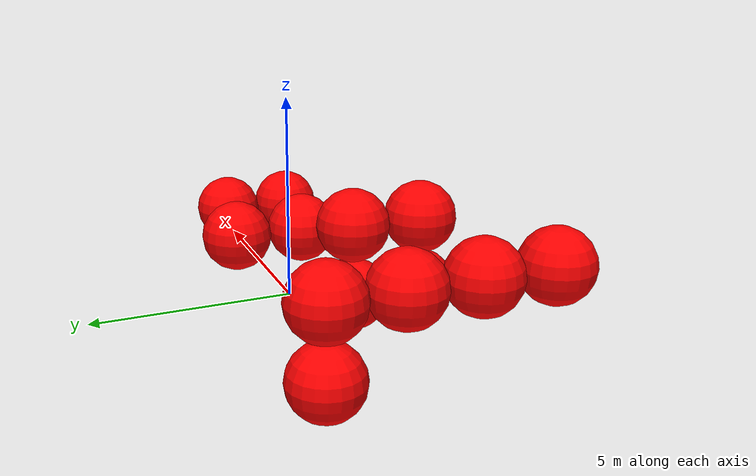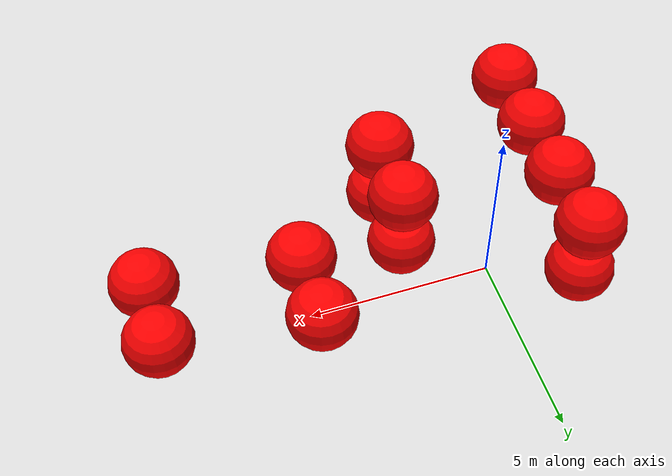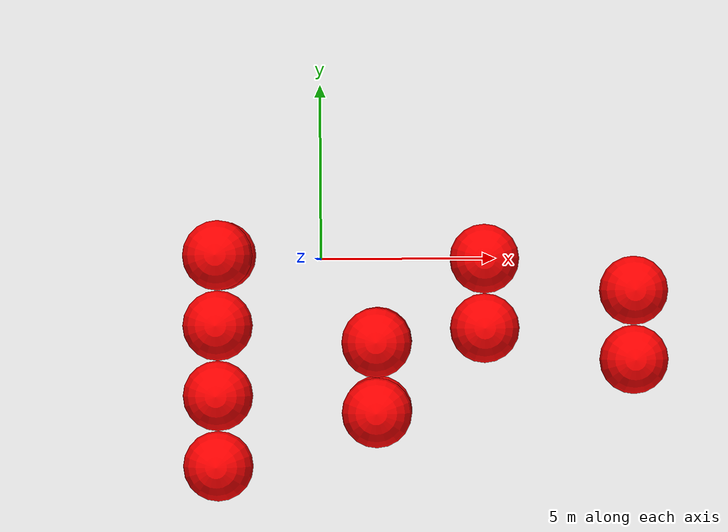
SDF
<sdf version="1.8">
 <world name="3d_world">
  <model name="obstacle_5" canonical_link="obstacle">
   <static>true</static>
   <pose relative_to="world">1.60 -4.38 -1.00 0 0 0</pose>
   <link name="obstacle">
    <pose relative_to="__model__">0.0 0 0.0 0 0 0</pose>
    <visual name="visual">
     <geometry><sphere><radius>1.00</radius></sphere></geometry>
     <material>
      <ambient>1.0 0.0 0.0 1</ambient>
      <diffuse>1.0 0.0 0.0 1</diffuse>
      <specular>1.0 0.0 0.0 1</specular>
     </material>
    </visual>
    <collision name="collision"><geometry><sphere><radius>1.00</radius></sphere></geometry></collision>
    <enable_gravity>false</enable_gravity>
   </link>
   <plugin filename="ignition-gazebo-velocity-control-system" name="ignition::gazebo::systems::VelocityControl">
    <initial_linear>0.00 0.00 0.00</initial_linear>
    <initial_angular>0 0 0</initial_angular>
   </plugin>
   <plugin filename="ignition-gazebo-odometry-publisher-system" name="ignition::gazebo::systems::OdometryPublisher">
    <dimensions>3</dimensions>
   </plugin>
  </model>
  <model name="obstacle_6" canonical_link="obstacle">
   <static>true</static>
   <pose relative_to="world">1.60 -2.38 -1.00 0 0 0</pose>
   <link name="obstacle">
    <pose relative_to="__model__">0.0 0 0.0 0 0 0</pose>
    <visual name="visual">
     <geometry><sphere><radius>1.00</radius></sphere></geometry>
     <material>
      <ambient>1.0 0.0 0.0 1</ambient>
      <diffuse>1.0 0.0 0.0 1</diffuse>
      <specular>1.0 0.0 0.0 1</specular>
     </material>
    </visual>
    <collision name="collision"><geometry><sphere><radius>1.00</radius></sphere></geometry></collision>
    <enable_gravity>false</enable_gravity>
   </link>
   <plugin filename="ignition-gazebo-velocity-control-system" name="ignition::gazebo::systems::VelocityControl">
    <initial_linear>0.00 0.00 0.00</initial_linear>
    <initial_angular>0 0 0</initial_angular>
   </plugin>
   <plugin filename="ignition-gazebo-odometry-publisher-system" name="ignition::gazebo::systems::OdometryPublisher">
    <dimensions>3</dimensions>
   </plugin>
  </model>
  <model name="obstacle_7" canonical_link="obstacle">
   <static>true</static>
   <pose relative_to="world">1.60 -4.38 1.00 0 0 0</pose>
   <link name="obstacle">
    <pose relative_to="__model__">0.0 0 0.0 0 0 0</pose>
    <visual name="visual">
     <geometry><sphere><radius>1.00</radius></sphere></geometry>
     <material>
      <ambient>1.0 0.0 0.0 1</ambient>
      <diffuse>1.0 0.0 0.0 1</diffuse>
      <specular>1.0 0.0 0.0 1</specular>
     </material>
    </visual>
    <collision name="collision"><geometry><sphere><radius>1.00</radius></sphere></geometry></collision>
    <enable_gravity>false</enable_gravity>
   </link>
   <plugin filename="ignition-gazebo-velocity-control-system" name="ignition::gazebo::systems::VelocityControl">
    <initial_linear>0.00 0.00 0.00</initial_linear>
    <initial_angular>0 0 0</initial_angular>
   </plugin>
   <plugin filename="ignition-gazebo-odometry-publisher-system" name="ignition::gazebo::systems::OdometryPublisher">
    <dimensions>3</dimensions>
   </plugin>
  </model>
  <model name="obstacle_8" canonical_link="obstacle">
   <static>true</static>
   <pose relative_to="world">1.60 -2.38 1.00 0 0 0</pose>
   <link name="obstacle">
    <pose relative_to="__model__">0.0 0 0.0 0 0 0</pose>
    <visual name="visual">
     <geometry><sphere><radius>1.00</radius></sphere></geometry>
     <material>
      <ambient>1.0 0.0 0.0 1</ambient>
      <diffuse>1.0 0.0 0.0 1</diffuse>
      <specular>1.0 0.0 0.0 1</specular>
     </material>
    </visual>
    <collision name="collision"><geometry><sphere><radius>1.00</radius></sphere></geometry></collision>
    <enable_gravity>false</enable_gravity>
   </link>
   <plugin filename="ignition-gazebo-velocity-control-system" name="ignition::gazebo::systems::VelocityControl">
    <initial_linear>0.00 0.00 0.00</initial_linear>
    <initial_angular>0 0 0</initial_angular>
   </plugin>
   <plugin filename="ignition-gazebo-odometry-publisher-system" name="ignition::gazebo::systems::OdometryPublisher">
    <dimensions>3</dimensions>
   </plugin>
  </model>
  <model name="obstacle_16" canonical_link="obstacle">
   <static>true</static>
   <pose relative_to="world">-2.92 0.13 -1.00 0 0 0</pose>
   <link name="obstacle">
    <pose relative_to="__model__">0.0 0 0.0 0 0 0</pose>
    <visual name="visual">
     <geometry><sphere><radius>1.00</radius></sphere></geometry>
     <material>
      <ambient>1.0 0.0 0.0 1</ambient>
      <diffuse>1.0 0.0 0.0 1</diffuse>
      <specular>1.0 0.0 0.0 1</specular>
     </material>
    </visual>
    <collision name="collision"><geometry><sphere><radius>1.00</radius></sphere></geometry></collision>
    <enable_gravity>false</enable_gravity>
   </link>
   <plugin filename="ignition-gazebo-velocity-control-system" name="ignition::gazebo::systems::VelocityControl">
    <initial_linear>0.00 0.00 0.00</initial_linear>
    <initial_angular>0 0 0</initial_angular>
   </plugin>
   <plugin filename="ignition-gazebo-odometry-publisher-system" name="ignition::gazebo::systems::OdometryPublisher">
    <dimensions>3</dimensions>
   </plugin>
  </model>
  <model name="obstacle_17" canonical_link="obstacle">
   <static>true</static>
   <pose relative_to="world">-2.92 -5.87 1.00 0 0 0</pose>
   <link name="obstacle">
    <pose relative_to="__model__">0.0 0 0.0 0 0 0</pose>
    <visual name="visual">
     <geometry><sphere><radius>1.00</radius></sphere></geometry>
     <material>
      <ambient>1.0 0.0 0.0 1</ambient>
      <diffuse>1.0 0.0 0.0 1</diffuse>
      <specular>1.0 0.0 0.0 1</specular>
     </material>
    </visual>
    <collision name="collision"><geometry><sphere><radius>1.00</radius></sphere></geometry></collision>
    <enable_gravity>false</enable_gravity>
   </link>
   <plugin filename="ignition-gazebo-velocity-control-system" name="ignition::gazebo::systems::VelocityControl">
    <initial_linear>0.00 0.00 0.00</initial_linear>
    <initial_angular>0 0 0</initial_angular>
   </plugin>
   <plugin filename="ignition-gazebo-odometry-publisher-system" name="ignition::gazebo::systems::OdometryPublisher">
    <dimensions>3</dimensions>
   </plugin>
  </model>
  <model name="obstacle_18" canonical_link="obstacle">
   <static>true</static>
   <pose relative_to="world">-2.92 -3.87 1.00 0 0 0</pose>
   <link name="obstacle">
    <pose relative_to="__model__">0.0 0 0.0 0 0 0</pose>
    <visual name="visual">
     <geometry><sphere><radius>1.00</radius></sphere></geometry>
     <material>
      <ambient>1.0 0.0 0.0 1</ambient>
      <diffuse>1.0 0.0 0.0 1</diffuse>
      <specular>1.0 0.0 0.0 1</specular>
     </material>
    </visual>
    <collision name="collision"><geometry><sphere><radius>1.00</radius></sphere></geometry></collision>
    <enable_gravity>false</enable_gravity>
   </link>
   <plugin filename="ignition-gazebo-velocity-control-system" name="ignition::gazebo::systems::VelocityControl">
    <initial_linear>0.00 0.00 0.00</initial_linear>
    <initial_angular>0 0 0</initial_angular>
   </plugin>
   <plugin filename="ignition-gazebo-odometry-publisher-system" name="ignition::gazebo::systems::OdometryPublisher">
    <dimensions>3</dimensions>
   </plugin>
  </model>
  <model name="obstacle_19" canonical_link="obstacle">
   <static>true</static>
   <pose relative_to="world">-2.92 -1.87 1.00 0 0 0</pose>
   <link name="obstacle">
    <pose relative_to="__model__">0.0 0 0.0 0 0 0</pose>
    <visual name="visual">
     <geometry><sphere><radius>1.00</radius></sphere></geometry>
     <material>
      <ambient>1.0 0.0 0.0 1</ambient>
      <diffuse>1.0 0.0 0.0 1</diffuse>
      <specular>1.0 0.0 0.0 1</specular>
     </material>
    </visual>
    <collision name="collision"><geometry><sphere><radius>1.00</radius></sphere></geometry></collision>
    <enable_gravity>false</enable_gravity>
   </link>
   <plugin filename="ignition-gazebo-velocity-control-system" name="ignition::gazebo::systems::VelocityControl">
    <initial_linear>0.00 0.00 0.00</initial_linear>
    <initial_angular>0 0 0</initial_angular>
   </plugin>
   <plugin filename="ignition-gazebo-odometry-publisher-system" name="ignition::gazebo::systems::OdometryPublisher">
    <dimensions>3</dimensions>
   </plugin>
  </model>
  <model name="obstacle_20" canonical_link="obstacle">
   <static>true</static>
   <pose relative_to="world">-2.92 0.13 1.00 0 0 0</pose>
   <link name="obstacle">
    <pose relative_to="__model__">0.0 0 0.0 0 0 0</pose>
    <visual name="visual">
     <geometry><sphere><radius>1.00</radius></sphere></geometry>
     <material>
      <ambient>1.0 0.0 0.0 1</ambient>
      <diffuse>1.0 0.0 0.0 1</diffuse>
      <specular>1.0 0.0 0.0 1</specular>
     </material>
    </visual>
    <collision name="collision"><geometry><sphere><radius>1.00</radius></sphere></geometry></collision>
    <enable_gravity>false</enable_gravity>
   </link>
   <plugin filename="ignition-gazebo-velocity-control-system" name="ignition::gazebo::systems::VelocityControl">
    <initial_linear>0.00 0.00 0.00</initial_linear>
    <initial_angular>0 0 0</initial_angular>
   </plugin>
   <plugin filename="ignition-gazebo-odometry-publisher-system" name="ignition::gazebo::systems::OdometryPublisher">
    <dimensions>3</dimensions>
   </plugin>
  </model>
  <model name="obstacle_21" canonical_link="obstacle">
   <static>false</static>
   <pose relative_to="world">9.03 -2.94 -0.63 0 0 0</pose>
   <link name="obstacle">
    <pose relative_to="__model__">0.0 0 0.0 0 0 0</pose>
    <visual name="visual">
     <geometry><sphere><radius>1.00</radius></sphere></geometry>
     <material>
      <ambient>1.0 0.0 0.0 1</ambient>
      <diffuse>1.0 0.0 0.0 1</diffuse>
      <specular>1.0 0.0 0.0 1</specular>
     </material>
    </visual>
    <collision name="collision"><geometry><sphere><radius>1.00</radius></sphere></geometry></collision>
    <enable_gravity>false</enable_gravity>
   </link>
   <plugin filename="ignition-gazebo-velocity-control-system" name="ignition::gazebo::systems::VelocityControl">
    <initial_linear>0.00 1.16 0.30</initial_linear>
    <initial_angular>0 0 0</initial_angular>
   </plugin>
   <plugin filename="ignition-gazebo-odometry-publisher-system" name="ignition::gazebo::systems::OdometryPublisher">
    <dimensions>3</dimensions>
   </plugin>
  </model>
  <model name="obstacle_22" canonical_link="obstacle">
   <static>false</static>
   <pose relative_to="world">9.03 -0.94 -0.63 0 0 0</pose>
   <link name="obstacle">
    <pose relative_to="__model__">0.0 0 0.0 0 0 0</pose>
    <visual name="visual">
     <geometry><sphere><radius>1.00</radius></sphere></geometry>
     <material>
      <ambient>1.0 0.0 0.0 1</ambient>
      <diffuse>1.0 0.0 0.0 1</diffuse>
      <specular>1.0 0.0 0.0 1</specular>
     </material>
    </visual>
    <collision name="collision"><geometry><sphere><radius>1.00</radius></sphere></geometry></collision>
    <enable_gravity>false</enable_gravity>
   </link>
   <plugin filename="ignition-gazebo-velocity-control-system" name="ignition::gazebo::systems::VelocityControl">
    <initial_linear>0.00 1.16 0.30</initial_linear>
    <initial_angular>0 0 0</initial_angular>
   </plugin>
   <plugin filename="ignition-gazebo-odometry-publisher-system" name="ignition::gazebo::systems::OdometryPublisher">
    <dimensions>3</dimensions>
   </plugin>
  </model>
  <model name="obstacle_23" canonical_link="obstacle">
   <static>false</static>
   <pose relative_to="world">4.70 -2.00 -0.04 0 0 0</pose>
   <link name="obstacle">
    <pose relative_to="__model__">0.0 0 0.0 0 0 0</pose>
    <visual name="visual">
     <geometry><sphere><radius>1.00</radius></sphere></geometry>
     <material>
      <ambient>1.0 0.0 0.0 1</ambient>
      <diffuse>1.0 0.0 0.0 1</diffuse>
      <specular>1.0 0.0 0.0 1</specular>
     </material>
    </visual>
    <collision name="collision"><geometry><sphere><radius>1.00</radius></sphere></geometry></collision>
    <enable_gravity>false</enable_gravity>
   </link>
   <plugin filename="ignition-gazebo-velocity-control-system" name="ignition::gazebo::systems::VelocityControl">
    <initial_linear>0.00 0.92 0.24</initial_linear>
    <initial_angular>0 0 0</initial_angular>
   </plugin>
   <plugin filename="ignition-gazebo-odometry-publisher-system" name="ignition::gazebo::systems::OdometryPublisher">
    <dimensions>3</dimensions>
   </plugin>
  </model>
  <model name="obstacle_24" canonical_link="obstacle">
   <static>false</static>
   <pose relative_to="world">4.70 0.00 -0.04 0 0 0</pose>
   <link name="obstacle">
    <pose relative_to="__model__">0.0 0 0.0 0 0 0</pose>
    <visual name="visual">
     <geometry><sphere><radius>1.00</radius></sphere></geometry>
     <material>
      <ambient>1.0 0.0 0.0 1</ambient>
      <diffuse>1.0 0.0 0.0 1</diffuse>
      <specular>1.0 0.0 0.0 1</specular>
     </material>
    </visual>
    <collision name="collision"><geometry><sphere><radius>1.00</radius></sphere></geometry></collision>
    <enable_gravity>false</enable_gravity>
   </link>
   <plugin filename="ignition-gazebo-velocity-control-system" name="ignition::gazebo::systems::VelocityControl">
    <initial_linear>0.00 0.92 0.24</initial_linear>
    <initial_angular>0 0 0</initial_angular>
   </plugin>
   <plugin filename="ignition-gazebo-odometry-publisher-system" name="ignition::gazebo::systems::OdometryPublisher">
    <dimensions>3</dimensions>
   </plugin>
  </model>
 </world>
</sdf>
